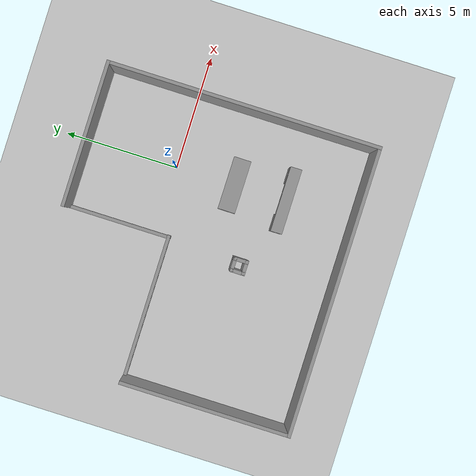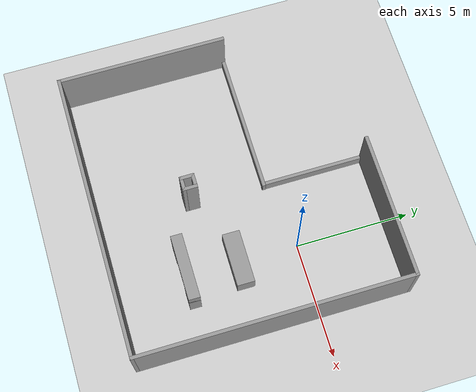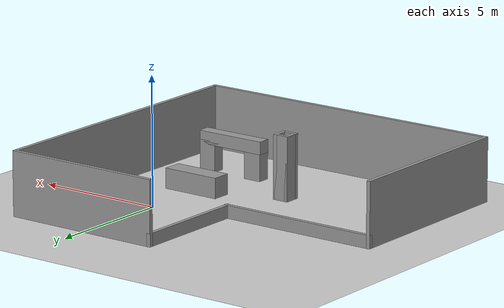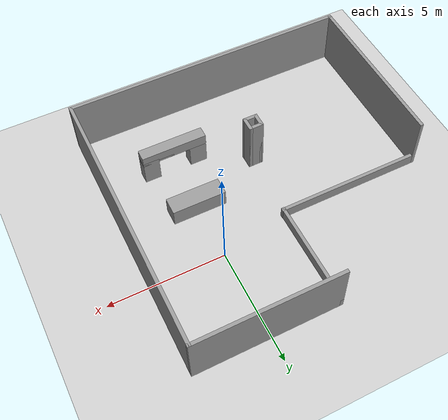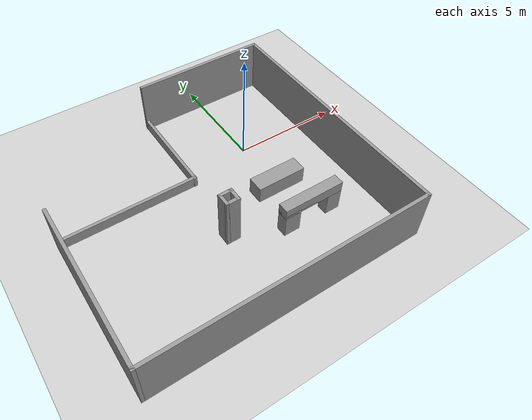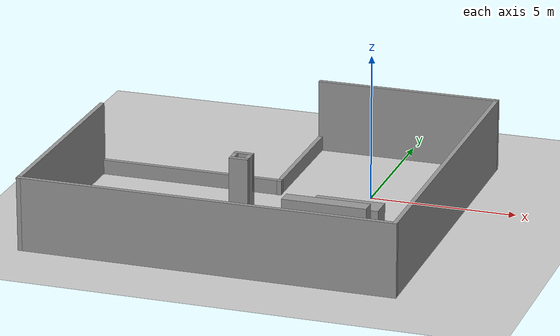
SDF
<sdf version="1.5">
 <world name="default">
  <light name="sun" type="directional">
   <cast_shadows>0</cast_shadows>
   <pose>0 0 10 0 -0 0</pose>
   <diffuse>0.8 0.8 0.8 1</diffuse>
   <specular>0.2 0.2 0.2 1</specular>
   <attenuation>
    <range>1000</range>
    <constant>0.9</constant>
    <linear>0.01</linear>
    <quadratic>0.001</quadratic>
   </attenuation>
   <direction>-0.5 0.1 -0.9</direction>
  </light>
  <model name="ground_plane">
   <static>1</static>
   <link name="link">
    <collision name="collision">
     <geometry><plane><normal>0 0 1</normal><size>100 100</size></plane></geometry>
     <surface><friction><ode><mu>100</mu><mu2>50</mu2></ode></friction></surface>
    </collision>
    <visual name="visual">
     <cast_shadows>0</cast_shadows>
     <geometry><plane><normal>0 0 1</normal><size>100 100</size></plane></geometry>
     <material>
      <script><uri>file://media/materials/scripts/gazebo.material</uri><name>Gazebo/Grey</name></script>
     </material>
    </visual>
   </link>
  </model>
  <physics name="default_physics" default="0" type="ode">
   <max_step_size>0.001</max_step_size>
   <real_time_factor>1</real_time_factor>
   <real_time_update_rate>1000</real_time_update_rate>
   <gravity>0 0 -9.8</gravity>
   <magnetic_field>5.5645e-06 2.28758e-05 -4.23884e-05</magnetic_field>
  </physics>
  <scene><ambient>0.4 0.4 0.4 1</ambient><background>0.7 0.7 0.7 1</background><shadows>0</shadows></scene>
  <spherical_coordinates>
   <surface_model>EARTH_WGS84</surface_model>
   <latitude_deg>0</latitude_deg>
   <longitude_deg>0</longitude_deg>
   <elevation>0</elevation>
   <heading_deg>0</heading_deg>
  </spherical_coordinates>
  <model name="raven">
   <pose>-3.05804 -2 0 0 -0 0</pose>
   <link name="Wall_0">
    <collision name="Wall_0_Collision">
     <geometry><box><size>6.36822 0.15 2.5</size></box></geometry>
     <pose>0 0 1.25 0 -0 0</pose>
    </collision>
    <visual name="Wall_0_Visual">
     <pose>0 0 1.25 0 -0 0</pose>
     <geometry><box><size>6.36822 0.15 2.5</size></box></geometry>
     <material>
      <script><uri>file://media/materials/scripts/gazebo.material</uri><name>Gazebo/Grey</name></script>
      <ambient>1 1 1 1</ambient>
     </material>
    </visual>
    <pose>3.16645 5.92503 0 0 -0 0</pose>
   </link>
   <link name="Wall_11">
    <collision name="Wall_11_Collision">
     <geometry><box><size>0.65 0.15 2.5</size></box></geometry>
     <pose>0 0 1.25 0 -0 0</pose>
    </collision>
    <visual name="Wall_11_Visual">
     <pose>0 0 1.25 0 -0 0</pose>
     <geometry><box><size>0.65 0.15 2.5</size></box></geometry>
     <material>
      <script><uri>file://media/materials/scripts/gazebo.material</uri><name>Gazebo/Grey</name></script>
      <ambient>1 1 1 1</ambient>
     </material>
    </visual>
    <pose>0.075449 -1.82497 0 0 0 -1.5708</pose>
   </link>
   <link name="Wall_12">
    <collision name="Wall_12_Collision">
     <geometry><box><size>0.65 0.15 2.5</size></box></geometry>
     <pose>0 0 1.25 0 -0 0</pose>
    </collision>
    <visual name="Wall_12_Visual">
     <pose>0 0 1.25 0 -0 0</pose>
     <geometry><box><size>0.65 0.15 2.5</size></box></geometry>
     <material>
      <script><uri>file://media/materials/scripts/gazebo.material</uri><name>Gazebo/Grey</name></script>
      <ambient>1 1 1 1</ambient>
     </material>
    </visual>
    <pose>-0.174551 -2.07497 0 0 -0 3.14159</pose>
   </link>
   <link name="Wall_13">
    <collision name="Wall_13_Collision">
     <geometry><box><size>0.65 0.15 2.5</size></box></geometry>
     <pose>0 0 1.25 0 -0 0</pose>
    </collision>
    <visual name="Wall_13_Visual">
     <pose>0 0 1.25 0 -0 0</pose>
     <geometry><box><size>0.65 0.15 2.5</size></box></geometry>
     <material>
      <script><uri>file://media/materials/scripts/gazebo.material</uri><name>Gazebo/Grey</name></script>
      <ambient>1 1 1 1</ambient>
     </material>
    </visual>
    <pose>-0.424551 -1.82497 0 0 -0 1.5708</pose>
   </link>
   <link name="Wall_14">
    <collision name="Wall_14_Collision">
     <geometry><box><size>0.65 0.15 2.5</size></box></geometry>
     <pose>0 0 1.25 0 -0 0</pose>
    </collision>
    <visual name="Wall_14_Visual">
     <pose>0 0 1.25 0 -0 0</pose>
     <geometry><box><size>0.65 0.15 2.5</size></box></geometry>
     <material>
      <script><uri>file://media/materials/scripts/gazebo.material</uri><name>Gazebo/Grey</name></script>
      <ambient>1 1 1 1</ambient>
     </material>
    </visual>
    <pose>-0.174551 -1.57497 0 0 -0 0</pose>
   </link>
   <link name="Wall_2">
    <collision name="Wall_2_Collision">
     <geometry><box><size>12 0.15 2.5</size></box></geometry>
     <pose>0 0 1.25 0 -0 0</pose>
    </collision>
    <visual name="Wall_2_Visual">
     <pose>0 0 1.25 0 -0 0</pose>
     <geometry><box><size>12 0.15 2.5</size></box></geometry>
     <material>
      <script><uri>file://media/materials/scripts/gazebo.material</uri><name>Gazebo/Grey</name></script>
      <ambient>1 1 1 1</ambient>
     </material>
    </visual>
    <pose>6.27545 2.6e-05 0 0 0 -1.5708</pose>
   </link>
   <link name="Wall_4">
    <collision name="Wall_4_Collision">
     <geometry><box><size>12.7 0.15 2.5</size></box></geometry>
     <pose>0 0 1.25 0 -0 0</pose>
    </collision>
    <visual name="Wall_4_Visual">
     <pose>0 0 1.25 0 -0 0</pose>
     <geometry><box><size>12.7 0.15 2.5</size></box></geometry>
     <material>
      <script><uri>file://media/materials/scripts/gazebo.material</uri><name>Gazebo/Grey</name></script>
      <ambient>1 1 1 1</ambient>
     </material>
    </visual>
    <pose>0.000449 -5.92497 0 0 -0 3.14159</pose>
   </link>
   <link name="Wall_6">
    <collision name="Wall_6_Collision">
     <geometry><box><size>7.48508 0.15 2.5</size></box></geometry>
     <pose>0 0 1.25 0 -0 0</pose>
    </collision>
    <visual name="Wall_6_Visual">
     <pose>0 0 1.25 0 -0 0</pose>
     <geometry><box><size>7.48508 0.15 2.5</size></box></geometry>
     <material>
      <script><uri>file://media/materials/scripts/gazebo.material</uri><name>Gazebo/Grey</name></script>
      <ambient>1 1 1 1</ambient>
     </material>
    </visual>
    <pose>-6.27505 -2.25747 0 0 -0 1.57093</pose>
   </link>
   <link name="Wall_7">
    <collision name="Wall_7_Collision">
     <geometry><box><size>6.5 0.15 0.5</size></box></geometry>
     <pose>0 0 0.25 0 -0 0</pose>
    </collision>
    <visual name="Wall_7_Visual">
     <pose>0 0 0.25 0 -0 0</pose>
     <geometry><box><size>6.5 0.15 0.5</size></box></geometry>
     <material>
      <script><uri>file://media/materials/scripts/gazebo.material</uri><name>Gazebo/Grey</name></script>
      <ambient>1 1 1 1</ambient>
     </material>
    </visual>
    <pose>-3.10055 1.41003 0 0 -0 0</pose>
   </link>
   <link name="Wall_9">
    <collision name="Wall_9_Collision">
     <geometry><box><size>4.68 0.15 0.5</size></box></geometry>
     <pose>0 0 0.25 0 -0 0</pose>
    </collision>
    <visual name="Wall_9_Visual">
     <pose>0 0 0.25 0 -0 0</pose>
     <geometry><box><size>4.68 0.15 0.5</size></box></geometry>
     <material>
      <script><uri>file://media/materials/scripts/gazebo.material</uri><name>Gazebo/Grey</name></script>
      <ambient>1 1 1 1</ambient>
     </material>
    </visual>
    <pose>0.057449 3.66003 0 0 0 -1.5708</pose>
   </link>
   <static>1</static>
  </model>
  <model name="unit_box_1">
   <pose>0.004671 -2.63407 0.399282 2.64698e-23 5e-05 -0.002676</pose>
   <link name="link">
    <inertial>
     <mass>1</mass>
     <inertia>
      <ixx>0.166667</ixx>
      <ixy>0</ixy>
      <ixz>0</ixz>
      <iyy>0.166667</iyy>
      <iyz>0</iyz>
      <izz>0.166667</izz>
     </inertia>
    </inertial>
    <collision name="collision"><geometry><box><size>2.34114 0.768259 0.79868</size></box></geometry></collision>
    <visual name="visual">
     <geometry><box><size>2.34114 0.768259 0.79868</size></box></geometry>
     <material>
      <script><name>Gazebo/Grey</name><uri>file://media/materials/scripts/gazebo.material</uri></script>
     </material>
    </visual>
   </link>
  </model>
  <model name="model_0">
   <pose>0 -4.90866 0 0 -0 0</pose>
   <link name="Floor_1">
    <collision name="Floor_1_Collision">
     <geometry><box><size>2.85 0.5 0.1</size></box></geometry>
     <pose>0 0 0.05 0 -0 0</pose>
    </collision>
    <visual name="Floor_1_Visual">
     <pose>0 0 0.05 0 -0 0</pose>
     <geometry><box><size>2.85 0.5 0.1</size></box></geometry>
     <material>
      <script><uri>file://media/materials/scripts/gazebo.material</uri><name>Gazebo/Grey</name></script>
      <ambient>1 1 1 1</ambient>
     </material>
    </visual>
    <pose>0 0 1.2 0 -0 0</pose>
   </link>
   <link name="Wall_0">
    <collision name="Wall_0_Collision">
     <geometry><box><size>0.75 0.5 1.2</size></box></geometry>
     <pose>0 0 0.75 0 -0 0</pose>
    </collision>
    <visual name="Wall_0_Visual">
     <pose>0 0 0.75 0 -0 0</pose>
     <geometry><box><size>0.75 0.5 1.2</size></box></geometry>
     <material>
      <script><uri>file://media/materials/scripts/gazebo.material</uri><name>Gazebo/Grey</name></script>
      <ambient>1 1 1 1</ambient>
     </material>
    </visual>
    <pose>-1.042 0 0 0 -0 3.14159</pose>
   </link>
   <link name="Wall_2">
    <collision name="Wall_2_Collision">
     <geometry><box><size>0.7 0.5 1.2</size></box></geometry>
     <pose>0 0 0.75 0 -0 0</pose>
    </collision>
    <visual name="Wall_2_Visual">
     <pose>0 0 0.75 0 -0 0</pose>
     <geometry><box><size>0.7 0.5 1.2</size></box></geometry>
     <material>
      <script><uri>file://media/materials/scripts/gazebo.material</uri><name>Gazebo/Grey</name></script>
      <ambient>1 1 1 1</ambient>
     </material>
    </visual>
    <pose>1.073 0 0 0 -0 0</pose>
   </link>
   <link name="Wall_6">
    <collision name="Wall_6_Collision">
     <geometry><box><size>2.85 0.5 0.5</size></box></geometry>
     <pose>0 0 0.25 0 -0 0</pose>
    </collision>
    <visual name="Wall_6_Visual">
     <pose>0 0 0.25 0 -0 0</pose>
     <geometry><box><size>2.85 0.5 0.5</size></box></geometry>
     <material>
      <script><uri>file://media/materials/scripts/gazebo.material</uri><name>Gazebo/Grey</name></script>
      <ambient>1 1 1 1</ambient>
     </material>
    </visual>
    <pose>0 0 1.2 0 -0 3.14159</pose>
   </link>
   <static>1</static>
  </model>
 </world>
</sdf>
